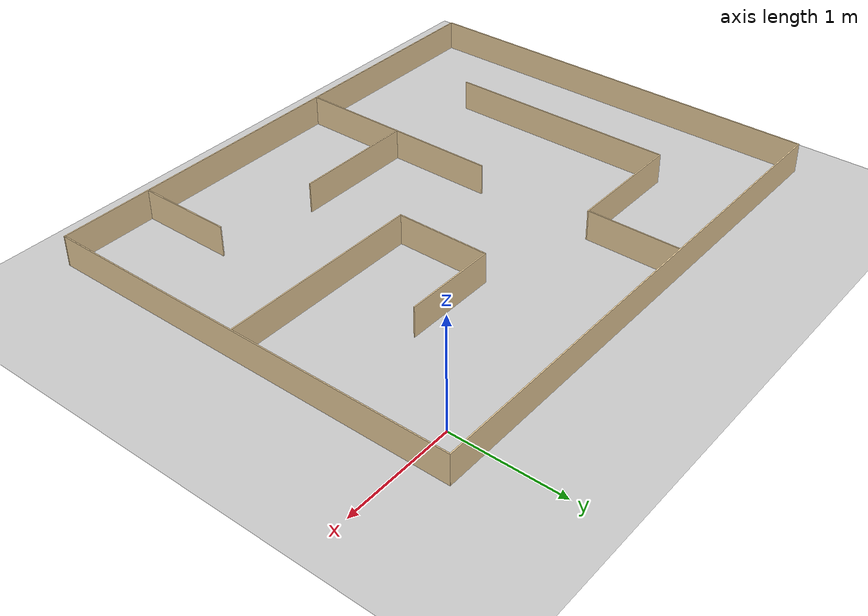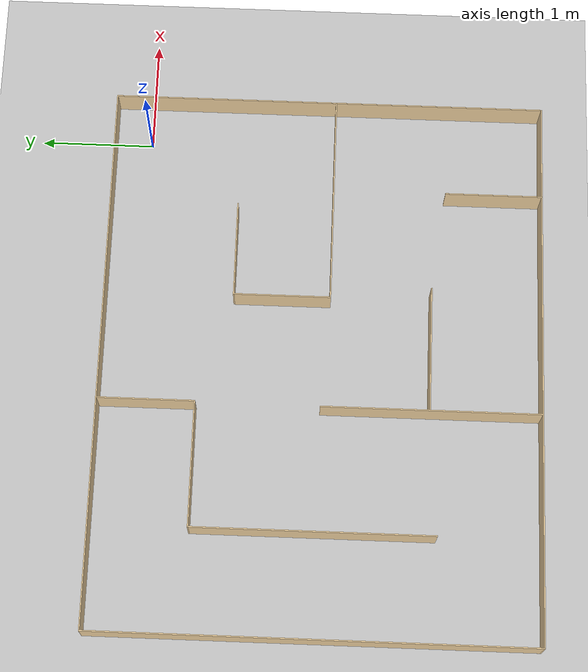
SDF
<sdf version="1.4">
 <world name="default">
  <scene><ambient>0.4 0.4 0.4 1</ambient><background>0.7 0.7 0.7 1</background><shadows>true</shadows></scene>
  <include><uri>model://sun</uri></include>
  <include><uri>model://ground_plane</uri></include>
  <include><uri>model://maze_1</uri><pose>-2.05 -1.60 0 0 0 0</pose></include>
  <physics type="ode">
   <real_time_update_rate>1000.0</real_time_update_rate>
   <max_step_size>0.001</max_step_size>
   <real_time_factor>1</real_time_factor>
   <ode>
    <solver>
     <type>quick</type>
     <iters>150</iters>
     <precon_iters>0</precon_iters>
     <sor>1.400000</sor>
     <use_dynamic_moi_rescaling>1</use_dynamic_moi_rescaling>
    </solver>
    <constraints>
     <cfm>0.00001</cfm>
     <erp>0.2</erp>
     <contact_max_correcting_vel>2000.000000</contact_max_correcting_vel>
     <contact_surface_layer>0.01000</contact_surface_layer>
    </constraints>
   </ode>
  </physics>
 </world>
</sdf>

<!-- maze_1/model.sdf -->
<sdf version='1.6'>
  <model name='maze_1'>
    <link name='Wall_0'>
      <pose frame=''>0 1.92596 0 0 -0 0</pose>
      <self_collide>0</self_collide>
      <kinematic>0</kinematic>
      <visual name='Wall_0_Visual'>
        <pose frame=''>0 0 0.14 0 -0 0</pose>
        <geometry>
          <box>
            <size>4.86 0.01 0.28</size>
          </box>
        </geometry>
        <material>
          <script>
            <uri>file://media/materials/scripts/gazebo.material</uri>
            <name>Gazebo/Grey</name>
          </script>
          <ambient>0.921569 0.807843 0.615686 1</ambient>
          <diffuse>0.7 0.7 0.7 1</diffuse>
          <specular>0.01 0.01 0.01 1</specular>
          <emissive>0 0 0 1</emissive>
        </material>
        <cast_shadows>1</cast_shadows>
        <transparency>0</transparency>
      </visual>
      <collision name='Wall_0_Collision'>
        <laser_retro>0</laser_retro>
        <max_contacts>10</max_contacts>
        <pose frame=''>0 0 0.14 0 -0 0</pose>
        <geometry>
          <box>
            <size>4.86 0.01 0.28</size>
          </box>
        </geometry>
        <surface>
          <friction>
            <ode>
              <mu>1</mu>
              <mu2>1</mu2>
              <fdir1>0 0 0</fdir1>
              <slip1>0</slip1>
              <slip2>0</slip2>
            </ode>
            <torsional>
              <coefficient>1</coefficient>
              <patch_radius>0</patch_radius>
              <surface_radius>0</surface_radius>
              <use_patch_radius>1</use_patch_radius>
              <ode>
                <slip>0</slip>
              </ode>
            </torsional>
          </friction>
          <bounce>
            <restitution_coefficient>0</restitution_coefficient>
            <threshold>1e+06</threshold>
          </bounce>
          <contact>
            <collide_without_contact>0</collide_without_contact>
            <collide_without_contact_bitmask>1</collide_without_contact_bitmask>
            <collide_bitmask>1</collide_bitmask>
            <ode>
              <soft_cfm>0</soft_cfm>
              <soft_erp>0.2</soft_erp>
              <kp>1e+13</kp>
              <kd>1</kd>
              <max_vel>0.01</max_vel>
              <min_depth>0</min_depth>
            </ode>
            <bullet>
              <split_impulse>1</split_impulse>
              <split_impulse_penetration_threshold>-0.01</split_impulse_penetration_threshold>
              <soft_cfm>0</soft_cfm>
              <soft_erp>0.2</soft_erp>
              <kp>1e+13</kp>
              <kd>1</kd>
            </bullet>
          </contact>
        </surface>
      </collision>
    </link>
    <link name='Wall_1'>
      <pose frame=''>2.425 0.000957 0 0 0 -1.5708</pose>
      <self_collide>0</self_collide>
      <kinematic>0</kinematic>
      <visual name='Wall_1_Visual'>
        <pose frame=''>0 0 0.14 0 -0 0</pose>
        <geometry>
          <box>
            <size>3.86 0.01 0.28</size>
          </box>
        </geometry>
        <material>
          <script>
            <uri>file://media/materials/scripts/gazebo.material</uri>
            <name>Gazebo/Grey</name>
          </script>
          <ambient>0.921569 0.807843 0.615686 1</ambient>
          <diffuse>0.7 0.7 0.7 1</diffuse>
          <specular>0.01 0.01 0.01 1</specular>
          <emissive>0 0 0 1</emissive>
        </material>
        <cast_shadows>1</cast_shadows>
        <transparency>0</transparency>
      </visual>
      <collision name='Wall_1_Collision'>
        <laser_retro>0</laser_retro>
        <max_contacts>10</max_contacts>
        <pose frame=''>0 0 0.14 0 -0 0</pose>
        <geometry>
          <box>
            <size>3.86 0.01 0.28</size>
          </box>
        </geometry>
        <surface>
          <friction>
            <ode>
              <mu>1</mu>
              <mu2>1</mu2>
              <fdir1>0 0 0</fdir1>
              <slip1>0</slip1>
              <slip2>0</slip2>
            </ode>
            <torsional>
              <coefficient>1</coefficient>
              <patch_radius>0</patch_radius>
              <surface_radius>0</surface_radius>
              <use_patch_radius>1</use_patch_radius>
              <ode>
                <slip>0</slip>
              </ode>
            </torsional>
          </friction>
          <bounce>
            <restitution_coefficient>0</restitution_coefficient>
            <threshold>1e+06</threshold>
          </bounce>
          <contact>
            <collide_without_contact>0</collide_without_contact>
            <collide_without_contact_bitmask>1</collide_without_contact_bitmask>
            <collide_bitmask>1</collide_bitmask>
            <ode>
              <soft_cfm>0</soft_cfm>
              <soft_erp>0.2</soft_erp>
              <kp>1e+13</kp>
              <kd>1</kd>
              <max_vel>0.01</max_vel>
              <min_depth>0</min_depth>
            </ode>
            <bullet>
              <split_impulse>1</split_impulse>
              <split_impulse_penetration_threshold>-0.01</split_impulse_penetration_threshold>
              <soft_cfm>0</soft_cfm>
              <soft_erp>0.2</soft_erp>
              <kp>1e+13</kp>
              <kd>1</kd>
            </bullet>
          </contact>
        </surface>
      </collision>
    </link>
    <link name='Wall_11'>
      <pose frame=''>0.128 -0.952043 0 0 -0 0</pose>
      <self_collide>0</self_collide>
      <kinematic>0</kinematic>
      <visual name='Wall_11_Visual'>
        <pose frame=''>0 0 0.14 0 -0 0</pose>
        <geometry>
          <box>
            <size>1.10961 0.01 0.28</size>
          </box>
        </geometry>
        <material>
          <script>
            <uri>file://media/materials/scripts/gazebo.material</uri>
            <name>Gazebo/Grey</name>
          </script>
          <ambient>0.921569 0.807843 0.615686 1</ambient>
          <diffuse>0.7 0.7 0.7 1</diffuse>
          <specular>0.01 0.01 0.01 1</specular>
          <emissive>0 0 0 1</emissive>
        </material>
        <cast_shadows>1</cast_shadows>
        <transparency>0</transparency>
      </visual>
      <collision name='Wall_11_Collision'>
        <laser_retro>0</laser_retro>
        <max_contacts>10</max_contacts>
        <pose frame=''>0 0 0.14 0 -0 0</pose>
        <geometry>
          <box>
            <size>1.10961 0.01 0.28</size>
          </box>
        </geometry>
        <surface>
          <friction>
            <ode>
              <mu>1</mu>
              <mu2>1</mu2>
              <fdir1>0 0 0</fdir1>
              <slip1>0</slip1>
              <slip2>0</slip2>
            </ode>
            <torsional>
              <coefficient>1</coefficient>
              <patch_radius>0</patch_radius>
              <surface_radius>0</surface_radius>
              <use_patch_radius>1</use_patch_radius>
              <ode>
                <slip>0</slip>
              </ode>
            </torsional>
          </friction>
          <bounce>
            <restitution_coefficient>0</restitution_coefficient>
            <threshold>1e+06</threshold>
          </bounce>
          <contact>
            <collide_without_contact>0</collide_without_contact>
            <collide_without_contact_bitmask>1</collide_without_contact_bitmask>
            <collide_bitmask>1</collide_bitmask>
            <ode>
              <soft_cfm>0</soft_cfm>
              <soft_erp>0.2</soft_erp>
              <kp>1e+13</kp>
              <kd>1</kd>
              <max_vel>0.01</max_vel>
              <min_depth>0</min_depth>
            </ode>
            <bullet>
              <split_impulse>1</split_impulse>
              <split_impulse_penetration_threshold>-0.01</split_impulse_penetration_threshold>
              <soft_cfm>0</soft_cfm>
              <soft_erp>0.2</soft_erp>
              <kp>1e+13</kp>
              <kd>1</kd>
            </bullet>
          </contact>
        </surface>
      </collision>
    </link>
    <link name='Wall_13'>
      <pose frame=''>1.578 -1.49263 0 0 -0 1.5708</pose>
      <self_collide>0</self_collide>
      <kinematic>0</kinematic>
      <visual name='Wall_13_Visual'>
        <pose frame=''>0 0 0.14 0 -0 0</pose>
        <geometry>
          <box>
            <size>0.859826 0.01 0.28</size>
          </box>
        </geometry>
        <material>
          <script>
            <uri>file://media/materials/scripts/gazebo.material</uri>
            <name>Gazebo/Grey</name>
          </script>
          <ambient>0.921569 0.807843 0.615686 1</ambient>
          <diffuse>0.7 0.7 0.7 1</diffuse>
          <specular>0.01 0.01 0.01 1</specular>
          <emissive>0 0 0 1</emissive>
        </material>
        <cast_shadows>1</cast_shadows>
        <transparency>0</transparency>
      </visual>
      <collision name='Wall_13_Collision'>
        <laser_retro>0</laser_retro>
        <max_contacts>10</max_contacts>
        <pose frame=''>0 0 0.14 0 -0 0</pose>
        <geometry>
          <box>
            <size>0.859826 0.01 0.28</size>
          </box>
        </geometry>
        <surface>
          <friction>
            <ode>
              <mu>1</mu>
              <mu2>1</mu2>
              <fdir1>0 0 0</fdir1>
              <slip1>0</slip1>
              <slip2>0</slip2>
            </ode>
            <torsional>
              <coefficient>1</coefficient>
              <patch_radius>0</patch_radius>
              <surface_radius>0</surface_radius>
              <use_patch_radius>1</use_patch_radius>
              <ode>
                <slip>0</slip>
              </ode>
            </torsional>
          </friction>
          <bounce>
            <restitution_coefficient>0</restitution_coefficient>
            <threshold>1e+06</threshold>
          </bounce>
          <contact>
            <collide_without_contact>0</collide_without_contact>
            <collide_without_contact_bitmask>1</collide_without_contact_bitmask>
            <collide_bitmask>1</collide_bitmask>
            <ode>
              <soft_cfm>0</soft_cfm>
              <soft_erp>0.2</soft_erp>
              <kp>1e+13</kp>
              <kd>1</kd>
              <max_vel>0.01</max_vel>
              <min_depth>0</min_depth>
            </ode>
            <bullet>
              <split_impulse>1</split_impulse>
              <split_impulse_penetration_threshold>-0.01</split_impulse_penetration_threshold>
              <soft_cfm>0</soft_cfm>
              <soft_erp>0.2</soft_erp>
              <kp>1e+13</kp>
              <kd>1</kd>
            </bullet>
          </contact>
        </surface>
      </collision>
    </link>
    <link name='Wall_15'>
      <pose frame=''>1.4962 -0.065043 0 0 -0 3.14159</pose>
      <self_collide>0</self_collide>
      <kinematic>0</kinematic>
      <visual name='Wall_15_Visual'>
        <pose frame=''>0 0 0.14 0 -0 0</pose>
        <geometry>
          <box>
            <size>1.85961 0.01 0.28</size>
          </box>
        </geometry>
        <material>
          <script>
            <uri>file://media/materials/scripts/gazebo.material</uri>
            <name>Gazebo/Grey</name>
          </script>
          <ambient>0.921569 0.807843 0.615686 1</ambient>
          <diffuse>0.7 0.7 0.7 1</diffuse>
          <specular>0.01 0.01 0.01 1</specular>
          <emissive>0 0 0 1</emissive>
        </material>
        <cast_shadows>1</cast_shadows>
        <transparency>0</transparency>
      </visual>
      <collision name='Wall_15_Collision'>
        <laser_retro>0</laser_retro>
        <max_contacts>10</max_contacts>
        <pose frame=''>0 0 0.14 0 -0 0</pose>
        <geometry>
          <box>
            <size>1.85961 0.01 0.28</size>
          </box>
        </geometry>
        <surface>
          <friction>
            <ode>
              <mu>1</mu>
              <mu2>1</mu2>
              <fdir1>0 0 0</fdir1>
              <slip1>0</slip1>
              <slip2>0</slip2>
            </ode>
            <torsional>
              <coefficient>1</coefficient>
              <patch_radius>0</patch_radius>
              <surface_radius>0</surface_radius>
              <use_patch_radius>1</use_patch_radius>
              <ode>
                <slip>0</slip>
              </ode>
            </torsional>
          </friction>
          <bounce>
            <restitution_coefficient>0</restitution_coefficient>
            <threshold>1e+06</threshold>
          </bounce>
          <contact>
            <collide_without_contact>0</collide_without_contact>
            <collide_without_contact_bitmask>1</collide_without_contact_bitmask>
            <collide_bitmask>1</collide_bitmask>
            <ode>
              <soft_cfm>0</soft_cfm>
              <soft_erp>0.2</soft_erp>
              <kp>1e+13</kp>
              <kd>1</kd>
              <max_vel>0.01</max_vel>
              <min_depth>0</min_depth>
            </ode>
            <bullet>
              <split_impulse>1</split_impulse>
              <split_impulse_penetration_threshold>-0.01</split_impulse_penetration_threshold>
              <soft_cfm>0</soft_cfm>
              <soft_erp>0.2</soft_erp>
              <kp>1e+13</kp>
              <kd>1</kd>
            </bullet>
          </contact>
        </surface>
      </collision>
    </link>
    <link name='Wall_16'>
      <pose frame=''>0.562 0.359957 0 0 -0 1.5708</pose>
      <self_collide>0</self_collide>
      <kinematic>0</kinematic>
      <visual name='Wall_16_Visual'>
        <pose frame=''>0 0 0.14 0 -0 0</pose>
        <geometry>
          <box>
            <size>0.859696 0.01 0.28</size>
          </box>
        </geometry>
        <material>
          <script>
            <uri>file://media/materials/scripts/gazebo.material</uri>
            <name>Gazebo/Grey</name>
          </script>
          <ambient>0.921569 0.807843 0.615686 1</ambient>
          <diffuse>0.7 0.7 0.7 1</diffuse>
          <specular>0.01 0.01 0.01 1</specular>
          <emissive>0 0 0 1</emissive>
        </material>
        <cast_shadows>1</cast_shadows>
        <transparency>0</transparency>
      </visual>
      <collision name='Wall_16_Collision'>
        <laser_retro>0</laser_retro>
        <max_contacts>10</max_contacts>
        <pose frame=''>0 0 0.14 0 -0 0</pose>
        <geometry>
          <box>
            <size>0.859696 0.01 0.28</size>
          </box>
        </geometry>
        <surface>
          <friction>
            <ode>
              <mu>1</mu>
              <mu2>1</mu2>
              <fdir1>0 0 0</fdir1>
              <slip1>0</slip1>
              <slip2>0</slip2>
            </ode>
            <torsional>
              <coefficient>1</coefficient>
              <patch_radius>0</patch_radius>
              <surface_radius>0</surface_radius>
              <use_patch_radius>1</use_patch_radius>
              <ode>
                <slip>0</slip>
              </ode>
            </torsional>
          </friction>
          <bounce>
            <restitution_coefficient>0</restitution_coefficient>
            <threshold>1e+06</threshold>
          </bounce>
          <contact>
            <collide_without_contact>0</collide_without_contact>
            <collide_without_contact_bitmask>1</collide_without_contact_bitmask>
            <collide_bitmask>1</collide_bitmask>
            <ode>
              <soft_cfm>0</soft_cfm>
              <soft_erp>0.2</soft_erp>
              <kp>1e+13</kp>
              <kd>1</kd>
              <max_vel>0.01</max_vel>
              <min_depth>0</min_depth>
            </ode>
            <bullet>
              <split_impulse>1</split_impulse>
              <split_impulse_penetration_threshold>-0.01</split_impulse_penetration_threshold>
              <soft_cfm>0</soft_cfm>
              <soft_erp>0.2</soft_erp>
              <kp>1e+13</kp>
              <kd>1</kd>
            </bullet>
          </contact>
        </surface>
      </collision>
    </link>
    <link name='Wall_17'>
      <pose frame=''>0.987 0.784957 0 0 -0 0</pose>
      <self_collide>0</self_collide>
      <kinematic>0</kinematic>
      <visual name='Wall_17_Visual'>
        <pose frame=''>0 0 0.14 0 -0 0</pose>
        <geometry>
          <box>
            <size>0.860391 0.01 0.28</size>
          </box>
        </geometry>
        <material>
          <script>
            <uri>file://media/materials/scripts/gazebo.material</uri>
            <name>Gazebo/Grey</name>
          </script>
          <ambient>0.921569 0.807843 0.615686 1</ambient>
          <diffuse>0.7 0.7 0.7 1</diffuse>
          <specular>0.01 0.01 0.01 1</specular>
          <emissive>0 0 0 1</emissive>
        </material>
        <cast_shadows>1</cast_shadows>
        <transparency>0</transparency>
      </visual>
      <collision name='Wall_17_Collision'>
        <laser_retro>0</laser_retro>
        <max_contacts>10</max_contacts>
        <pose frame=''>0 0 0.14 0 -0 0</pose>
        <geometry>
          <box>
            <size>0.860391 0.01 0.28</size>
          </box>
        </geometry>
        <surface>
          <friction>
            <ode>
              <mu>1</mu>
              <mu2>1</mu2>
              <fdir1>0 0 0</fdir1>
              <slip1>0</slip1>
              <slip2>0</slip2>
            </ode>
            <torsional>
              <coefficient>1</coefficient>
              <patch_radius>0</patch_radius>
              <surface_radius>0</surface_radius>
              <use_patch_radius>1</use_patch_radius>
              <ode>
                <slip>0</slip>
              </ode>
            </torsional>
          </friction>
          <bounce>
            <restitution_coefficient>0</restitution_coefficient>
            <threshold>1e+06</threshold>
          </bounce>
          <contact>
            <collide_without_contact>0</collide_without_contact>
            <collide_without_contact_bitmask>1</collide_without_contact_bitmask>
            <collide_bitmask>1</collide_bitmask>
            <ode>
              <soft_cfm>0</soft_cfm>
              <soft_erp>0.2</soft_erp>
              <kp>1e+13</kp>
              <kd>1</kd>
              <max_vel>0.01</max_vel>
              <min_depth>0</min_depth>
            </ode>
            <bullet>
              <split_impulse>1</split_impulse>
              <split_impulse_penetration_threshold>-0.01</split_impulse_penetration_threshold>
              <soft_cfm>0</soft_cfm>
              <soft_erp>0.2</soft_erp>
              <kp>1e+13</kp>
              <kd>1</kd>
            </bullet>
          </contact>
        </surface>
      </collision>
    </link>
    <link name='Wall_2'>
      <pose frame=''>0 -1.92404 0 0 -0 3.14159</pose>
      <self_collide>0</self_collide>
      <kinematic>0</kinematic>
      <visual name='Wall_2_Visual'>
        <pose frame=''>0 0 0.14 0 -0 0</pose>
        <geometry>
          <box>
            <size>4.86 0.01 0.28</size>
          </box>
        </geometry>
        <material>
          <script>
            <uri>file://media/materials/scripts/gazebo.material</uri>
            <name>Gazebo/Grey</name>
          </script>
          <ambient>0.921569 0.807843 0.615686 1</ambient>
          <diffuse>0.7 0.7 0.7 1</diffuse>
          <specular>0.01 0.01 0.01 1</specular>
          <emissive>0 0 0 1</emissive>
        </material>
        <cast_shadows>1</cast_shadows>
        <transparency>0</transparency>
      </visual>
      <collision name='Wall_2_Collision'>
        <laser_retro>0</laser_retro>
        <max_contacts>10</max_contacts>
        <pose frame=''>0 0 0.14 0 -0 0</pose>
        <geometry>
          <box>
            <size>4.86 0.01 0.28</size>
          </box>
        </geometry>
        <surface>
          <friction>
            <ode>
              <mu>1</mu>
              <mu2>1</mu2>
              <fdir1>0 0 0</fdir1>
              <slip1>0</slip1>
              <slip2>0</slip2>
            </ode>
            <torsional>
              <coefficient>1</coefficient>
              <patch_radius>0</patch_radius>
              <surface_radius>0</surface_radius>
              <use_patch_radius>1</use_patch_radius>
              <ode>
                <slip>0</slip>
              </ode>
            </torsional>
          </friction>
          <bounce>
            <restitution_coefficient>0</restitution_coefficient>
            <threshold>1e+06</threshold>
          </bounce>
          <contact>
            <collide_without_contact>0</collide_without_contact>
            <collide_without_contact_bitmask>1</collide_without_contact_bitmask>
            <collide_bitmask>1</collide_bitmask>
            <ode>
              <soft_cfm>0</soft_cfm>
              <soft_erp>0.2</soft_erp>
              <kp>1e+13</kp>
              <kd>1</kd>
              <max_vel>0.01</max_vel>
              <min_depth>0</min_depth>
            </ode>
            <bullet>
              <split_impulse>1</split_impulse>
              <split_impulse_penetration_threshold>-0.01</split_impulse_penetration_threshold>
              <soft_cfm>0</soft_cfm>
              <soft_erp>0.2</soft_erp>
              <kp>1e+13</kp>
              <kd>1</kd>
            </bullet>
          </contact>
        </surface>
      </collision>
    </link>
    <link name='Wall_3'>
      <pose frame=''>-2.425 0.000957 0 0 -0 1.5708</pose>
      <self_collide>0</self_collide>
      <kinematic>0</kinematic>
      <visual name='Wall_3_Visual'>
        <pose frame=''>0 0 0.14 0 -0 0</pose>
        <geometry>
          <box>
            <size>3.86 0.01 0.28</size>
          </box>
        </geometry>
        <material>
          <script>
            <uri>file://media/materials/scripts/gazebo.material</uri>
            <name>Gazebo/Grey</name>
          </script>
          <ambient>0.921569 0.807843 0.615686 1</ambient>
          <diffuse>0.7 0.7 0.7 1</diffuse>
          <specular>0.01 0.01 0.01 1</specular>
          <emissive>0 0 0 1</emissive>
        </material>
        <cast_shadows>1</cast_shadows>
        <transparency>0</transparency>
      </visual>
      <collision name='Wall_3_Collision'>
        <laser_retro>0</laser_retro>
        <max_contacts>10</max_contacts>
        <pose frame=''>0 0 0.14 0 -0 0</pose>
        <geometry>
          <box>
            <size>3.86 0.01 0.28</size>
          </box>
        </geometry>
        <surface>
          <friction>
            <ode>
              <mu>1</mu>
              <mu2>1</mu2>
              <fdir1>0 0 0</fdir1>
              <slip1>0</slip1>
              <slip2>0</slip2>
            </ode>
            <torsional>
              <coefficient>1</coefficient>
              <patch_radius>0</patch_radius>
              <surface_radius>0</surface_radius>
              <use_patch_radius>1</use_patch_radius>
              <ode>
                <slip>0</slip>
              </ode>
            </torsional>
          </friction>
          <bounce>
            <restitution_coefficient>0</restitution_coefficient>
            <threshold>1e+06</threshold>
          </bounce>
          <contact>
            <collide_without_contact>0</collide_without_contact>
            <collide_without_contact_bitmask>1</collide_without_contact_bitmask>
            <collide_bitmask>1</collide_bitmask>
            <ode>
              <soft_cfm>0</soft_cfm>
              <soft_erp>0.2</soft_erp>
              <kp>1e+13</kp>
              <kd>1</kd>
              <max_vel>0.01</max_vel>
              <min_depth>0</min_depth>
            </ode>
            <bullet>
              <split_impulse>1</split_impulse>
              <split_impulse_penetration_threshold>-0.01</split_impulse_penetration_threshold>
              <soft_cfm>0</soft_cfm>
              <soft_erp>0.2</soft_erp>
              <kp>1e+13</kp>
              <kd>1</kd>
            </bullet>
          </contact>
        </surface>
      </collision>
    </link>
    <link name='Wall_5'>
      <pose frame=''>-0.422 1.50096 0 0 0 -1.5708</pose>
      <self_collide>0</self_collide>
      <kinematic>0</kinematic>
      <visual name='Wall_5_Visual'>
        <pose frame=''>0 0 0.14 0 -0 0</pose>
        <geometry>
          <box>
            <size>0.86 0.01 0.28</size>
          </box>
        </geometry>
        <material>
          <script>
            <uri>file://media/materials/scripts/gazebo.material</uri>
            <name>Gazebo/Grey</name>
          </script>
          <ambient>0.921569 0.807843 0.615686 1</ambient>
          <diffuse>0.7 0.7 0.7 1</diffuse>
          <specular>0.01 0.01 0.01 1</specular>
          <emissive>0 0 0 1</emissive>
        </material>
        <cast_shadows>1</cast_shadows>
        <transparency>0</transparency>
      </visual>
      <collision name='Wall_5_Collision'>
        <laser_retro>0</laser_retro>
        <max_contacts>10</max_contacts>
        <pose frame=''>0 0 0.14 0 -0 0</pose>
        <geometry>
          <box>
            <size>0.86 0.01 0.28</size>
          </box>
        </geometry>
        <surface>
          <friction>
            <ode>
              <mu>1</mu>
              <mu2>1</mu2>
              <fdir1>0 0 0</fdir1>
              <slip1>0</slip1>
              <slip2>0</slip2>
            </ode>
            <torsional>
              <coefficient>1</coefficient>
              <patch_radius>0</patch_radius>
              <surface_radius>0</surface_radius>
              <use_patch_radius>1</use_patch_radius>
              <ode>
                <slip>0</slip>
              </ode>
            </torsional>
          </friction>
          <bounce>
            <restitution_coefficient>0</restitution_coefficient>
            <threshold>1e+06</threshold>
          </bounce>
          <contact>
            <collide_without_contact>0</collide_without_contact>
            <collide_without_contact_bitmask>1</collide_without_contact_bitmask>
            <collide_bitmask>1</collide_bitmask>
            <ode>
              <soft_cfm>0</soft_cfm>
              <soft_erp>0.2</soft_erp>
              <kp>1e+13</kp>
              <kd>1</kd>
              <max_vel>0.01</max_vel>
              <min_depth>0</min_depth>
            </ode>
            <bullet>
              <split_impulse>1</split_impulse>
              <split_impulse_penetration_threshold>-0.01</split_impulse_penetration_threshold>
              <soft_cfm>0</soft_cfm>
              <soft_erp>0.2</soft_erp>
              <kp>1e+13</kp>
              <kd>1</kd>
            </bullet>
          </contact>
        </surface>
      </collision>
    </link>
    <link name='Wall_6'>
      <pose frame=''>-0.972 1.07596 0 0 -0 3.14159</pose>
      <self_collide>0</self_collide>
      <kinematic>0</kinematic>
      <visual name='Wall_6_Visual'>
        <pose frame=''>0 0 0.14 0 -0 0</pose>
        <geometry>
          <box>
            <size>1.11039 0.01 0.28</size>
          </box>
        </geometry>
        <material>
          <script>
            <uri>file://media/materials/scripts/gazebo.material</uri>
            <name>Gazebo/Grey</name>
          </script>
          <ambient>0.921569 0.807843 0.615686 1</ambient>
          <diffuse>0.7 0.7 0.7 1</diffuse>
          <specular>0.01 0.01 0.01 1</specular>
          <emissive>0 0 0 1</emissive>
        </material>
        <cast_shadows>1</cast_shadows>
        <transparency>0</transparency>
      </visual>
      <collision name='Wall_6_Collision'>
        <laser_retro>0</laser_retro>
        <max_contacts>10</max_contacts>
        <pose frame=''>0 0 0.14 0 -0 0</pose>
        <geometry>
          <box>
            <size>1.11039 0.01 0.28</size>
          </box>
        </geometry>
        <surface>
          <friction>
            <ode>
              <mu>1</mu>
              <mu2>1</mu2>
              <fdir1>0 0 0</fdir1>
              <slip1>0</slip1>
              <slip2>0</slip2>
            </ode>
            <torsional>
              <coefficient>1</coefficient>
              <patch_radius>0</patch_radius>
              <surface_radius>0</surface_radius>
              <use_patch_radius>1</use_patch_radius>
              <ode>
                <slip>0</slip>
              </ode>
            </torsional>
          </friction>
          <bounce>
            <restitution_coefficient>0</restitution_coefficient>
            <threshold>1e+06</threshold>
          </bounce>
          <contact>
            <collide_without_contact>0</collide_without_contact>
            <collide_without_contact_bitmask>1</collide_without_contact_bitmask>
            <collide_bitmask>1</collide_bitmask>
            <ode>
              <soft_cfm>0</soft_cfm>
              <soft_erp>0.2</soft_erp>
              <kp>1e+13</kp>
              <kd>1</kd>
              <max_vel>0.01</max_vel>
              <min_depth>0</min_depth>
            </ode>
            <bullet>
              <split_impulse>1</split_impulse>
              <split_impulse_penetration_threshold>-0.01</split_impulse_penetration_threshold>
              <soft_cfm>0</soft_cfm>
              <soft_erp>0.2</soft_erp>
              <kp>1e+13</kp>
              <kd>1</kd>
            </bullet>
          </contact>
        </surface>
      </collision>
    </link>
    <link name='Wall_7'>
      <pose frame=''>-1.522 0.025957 0 0 0 -1.5708</pose>
      <self_collide>0</self_collide>
      <kinematic>0</kinematic>
      <visual name='Wall_7_Visual'>
        <pose frame=''>0 0 0.14 0 -0 0</pose>
        <geometry>
          <box>
            <size>2.11 0.01 0.28</size>
          </box>
        </geometry>
        <material>
          <script>
            <uri>file://media/materials/scripts/gazebo.material</uri>
            <name>Gazebo/Grey</name>
          </script>
          <ambient>0.921569 0.807843 0.615686 1</ambient>
          <diffuse>0.7 0.7 0.7 1</diffuse>
          <specular>0.01 0.01 0.01 1</specular>
          <emissive>0 0 0 1</emissive>
        </material>
        <cast_shadows>1</cast_shadows>
        <transparency>0</transparency>
      </visual>
      <collision name='Wall_7_Collision'>
        <laser_retro>0</laser_retro>
        <max_contacts>10</max_contacts>
        <pose frame=''>0 0 0.14 0 -0 0</pose>
        <geometry>
          <box>
            <size>2.11 0.01 0.28</size>
          </box>
        </geometry>
        <surface>
          <friction>
            <ode>
              <mu>1</mu>
              <mu2>1</mu2>
              <fdir1>0 0 0</fdir1>
              <slip1>0</slip1>
              <slip2>0</slip2>
            </ode>
            <torsional>
              <coefficient>1</coefficient>
              <patch_radius>0</patch_radius>
              <surface_radius>0</surface_radius>
              <use_patch_radius>1</use_patch_radius>
              <ode>
                <slip>0</slip>
              </ode>
            </torsional>
          </friction>
          <bounce>
            <restitution_coefficient>0</restitution_coefficient>
            <threshold>1e+06</threshold>
          </bounce>
          <contact>
            <collide_without_contact>0</collide_without_contact>
            <collide_without_contact_bitmask>1</collide_without_contact_bitmask>
            <collide_bitmask>1</collide_bitmask>
            <ode>
              <soft_cfm>0</soft_cfm>
              <soft_erp>0.2</soft_erp>
              <kp>1e+13</kp>
              <kd>1</kd>
              <max_vel>0.01</max_vel>
              <min_depth>0</min_depth>
            </ode>
            <bullet>
              <split_impulse>1</split_impulse>
              <split_impulse_penetration_threshold>-0.01</split_impulse_penetration_threshold>
              <soft_cfm>0</soft_cfm>
              <soft_erp>0.2</soft_erp>
              <kp>1e+13</kp>
              <kd>1</kd>
            </bullet>
          </contact>
        </surface>
      </collision>
    </link>
    <link name='Wall_9'>
      <pose frame=''>-0.431 -0.966043 0 0 -0 1.5708</pose>
      <self_collide>0</self_collide>
      <kinematic>0</kinematic>
      <inertial>
        <inertia>
          <ixx>nan</ixx>
          <ixy>0</ixy>
          <ixz>0</ixz>
          <iyy>nan</iyy>
          <iyz>0</iyz>
          <izz>nan</izz>
        </inertia>
        <mass>0</mass>
        <pose frame=''>0 0 0 0 -0 0</pose>
      </inertial>
      <visual name='Wall_9_Visual'>
        <pose frame=''>0 0 0.14 0 -0 0</pose>
        <geometry>
          <box>
            <size>1.92145 0.01 0.28</size>
          </box>
        </geometry>
        <material>
          <script>
            <uri>file://media/materials/scripts/gazebo.material</uri>
            <name>Gazebo/Grey</name>
          </script>
          <ambient>0.921569 0.807843 0.615686 1</ambient>
          <diffuse>0.7 0.7 0.7 1</diffuse>
          <specular>0.01 0.01 0.01 1</specular>
          <emissive>0 0 0 1</emissive>
        </material>
        <cast_shadows>1</cast_shadows>
        <transparency>0</transparency>
      </visual>
      <collision name='Wall_9_Collision'>
        <laser_retro>0</laser_retro>
        <max_contacts>10</max_contacts>
        <pose frame=''>0 0 0.14 0 -0 0</pose>
        <geometry>
          <box>
            <size>1.92145 0.01 0.28</size>
          </box>
        </geometry>
        <surface>
          <friction>
            <ode>
              <mu>1</mu>
              <mu2>1</mu2>
              <fdir1>0 0 0</fdir1>
              <slip1>0</slip1>
              <slip2>0</slip2>
            </ode>
            <torsional>
              <coefficient>1</coefficient>
              <patch_radius>0</patch_radius>
              <surface_radius>0</surface_radius>
              <use_patch_radius>1</use_patch_radius>
              <ode>
                <slip>0</slip>
              </ode>
            </torsional>
          </friction>
          <bounce>
            <restitution_coefficient>0</restitution_coefficient>
            <threshold>1e+06</threshold>
          </bounce>
          <contact>
            <collide_without_contact>0</collide_without_contact>
            <collide_without_contact_bitmask>1</collide_without_contact_bitmask>
            <collide_bitmask>1</collide_bitmask>
            <ode>
              <soft_cfm>0</soft_cfm>
              <soft_erp>0.2</soft_erp>
              <kp>1e+13</kp>
              <kd>1</kd>
              <max_vel>0.01</max_vel>
              <min_depth>0</min_depth>
            </ode>
            <bullet>
              <split_impulse>1</split_impulse>
              <split_impulse_penetration_threshold>-0.01</split_impulse_penetration_threshold>
              <soft_cfm>0</soft_cfm>
              <soft_erp>0.2</soft_erp>
              <kp>1e+13</kp>
              <kd>1</kd>
            </bullet>
          </contact>
        </surface>
      </collision>
    </link>
    <static>1</static>
    <allow_auto_disable>1</allow_auto_disable>
  </model>
</sdf>
